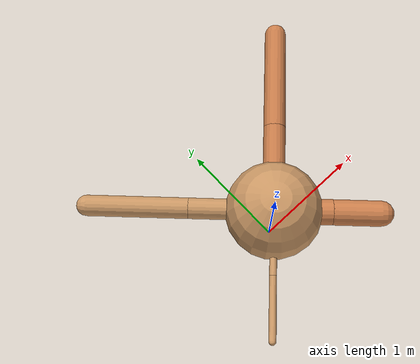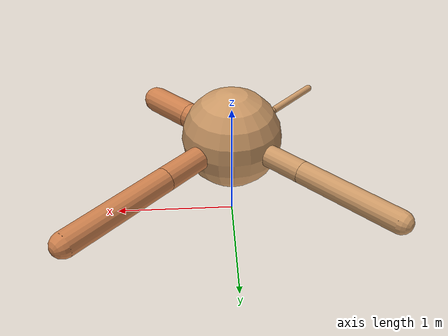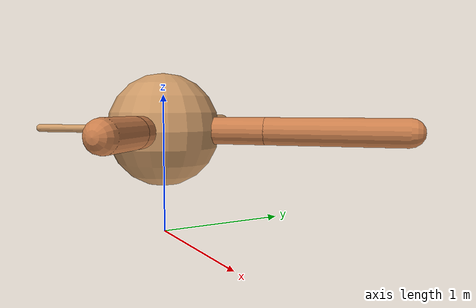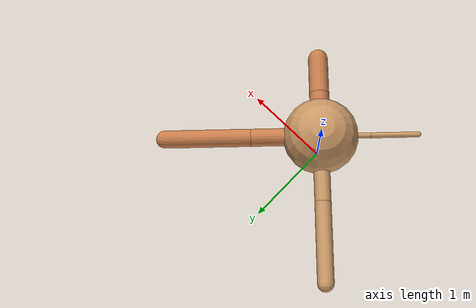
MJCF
<?xml version="1.0" ?>
<mujoco model="ant">

	<compiler angle="degree" coordinate="local" inertiafromgeom="true"/>

	<option integrator="RK4" timestep="0.01"/>

	<custom>

		<numeric data="0.0 0.0 0.55 1.0 0.0 0.0 0.0 0.0 1.0 0.0 -1.0 0.0 -1.0 0.0 1.0" name="init_qpos"/>

	</custom>

	<default>

		<joint armature="1" damping="1" limited="true"/>

		<geom conaffinity="0" condim="3" density="5.0" friction="1.5 0.1 0.1" margin="0.01" rgba="0.8 0.6 0.4 1"/>

	</default>

	<worldbody>

		<body name="torso" pos="0 0 0.75">

			<geom name="torso_geom" pos="0 0 0" size="0.4047872678811011" type="sphere"/>

			<!--joint armature="0" damping="0" limited="false" margin="0.01" name="root" pos="0 0 0" type="free"/-->

			<body name="front_left_leg" pos="0 0 0">

				<geom fromto="0 0 0 0.2 0.2 0" name="aux_1_geom" size="0.09484080760077125" type="capsule" rgba=".8 .5 .3 1"/>

				<body name="aux_1" pos="0.2 0.2 0">

					<joint axis="0 0 1" name="hip_1" pos="0.0 0.0 0.0" range="-40 40" type="hinge"/>

					<geom fromto="0 0 0 0.32372332694528627 0.32372332694528627 0" name="left_leg_geom" size="0.09484080760077125" type="capsule" rgba=".8 .5 .3 1"/>

					<body pos="0.32372332694528627 0.32372332694528627 0" name="front_left_foot">

						<joint axis="-1 1 0" name="ankle_1" pos="0.0 0.0 0.0" range="30 100" type="hinge"/>

						<geom fromto="0 0 0 0.6474466538905725 0.6474466538905725 0" name="left_ankle_geom" size="0.09484080760077125" type="capsule" rgba=".8 .5 .3 1"/>

					</body>

				</body>

			</body>

			<body name="front_right_leg" pos="0 0 0">

				<geom fromto="0 0 0 -0.2 0.2 0" name="aux_2_geom" size="0.087485449493009" type="capsule"/>

				<body name="aux_2" pos="-0.2 0.2 0">

					<joint axis="0 0 1" name="hip_2" pos="0.0 0.0 0.0" range="-40 40" type="hinge"/>

					<geom fromto="0 0 0 -0.2964073366211984 0.2964073366211984 0" name="right_leg_geom" size="0.087485449493009" type="capsule"/>

					<body pos="-0.2964073366211984 0.2964073366211984 0" name="front_right_foot">

						<joint axis="1 1 0" name="ankle_2" pos="0.0 0.0 0.0" range="-100 -30" type="hinge"/>

						<geom fromto="0 0 0 -0.5928146732423968 0.5928146732423968 0" name="right_ankle_geom" size="0.087485449493009" type="capsule"/>

					</body>

				</body>

			</body>

			<body name="left_back_leg" pos="0 0 0">

				<geom fromto="0 0 0 -0.2 -0.2 0" name="aux_3_geom" size="0.030172887907502055" type="capsule"/>

				<body name="aux_3" pos="-0.2 -0.2 0">

					<joint axis="0 0 1" name="hip_3" pos="0.0 0.0 0.0" range="-40 40" type="hinge"/>

					<geom fromto="0 0 0 -0.17941792540203233 -0.17941792540203233 0" name="back_leg_geom" size="0.030172887907502055" type="capsule"/>

					<body pos="-0.17941792540203233 -0.17941792540203233 0" name="left_back_foot">

						<joint axis="-1 1 0" name="ankle_3" pos="0.0 0.0 0.0" range="-100 -30" type="hinge"/>

						<geom fromto="0 0 0 -0.35883585080406466 -0.35883585080406466 0" name="third_ankle_geom" size="0.030172887907502055" type="capsule"/>

					</body>

				</body>

			</body>

			<body name="right_back_leg" pos="0 0 0">

				<geom fromto="0 0 0 0.2 -0.2 0" name="aux_4_geom" size="0.10714996827750754" type="capsule" rgba=".8 .5 .3 1"/>

				<body name="aux_4" pos="0.2 -0.2 0">

					<joint axis="0 0 1" name="hip_4" pos="0.0 0.0 0.0" range="-40 40" type="hinge"/>

					<geom fromto="0 0 0 0.14104216949132234 -0.14104216949132234 0" name="rightback_leg_geom" size="0.10714996827750754" type="capsule" rgba=".8 .5 .3 1"/>

					<body pos="0.14104216949132234 -0.14104216949132234 0" name="right_back_foot">

						<joint axis="1 1 0" name="ankle_4" pos="0.0 0.0 0.0" range="30 100" type="hinge"/>

						<geom fromto="0 0 0 0.2820843389826447 -0.2820843389826447 0" name="fourth_ankle_geom" size="0.10714996827750754" type="capsule" rgba=".8 .5 .3 1"/>

					</body>

				</body>

			</body>

		</body>

	</worldbody>

	<actuator>

		<motor ctrllimited="true" ctrlrange="-1.0 1.0" joint="hip_4" gear="150"/>

		<motor ctrllimited="true" ctrlrange="-1.0 1.0" joint="ankle_4" gear="150"/>

		<motor ctrllimited="true" ctrlrange="-1.0 1.0" joint="hip_1" gear="150"/>

		<motor ctrllimited="true" ctrlrange="-1.0 1.0" joint="ankle_1" gear="150"/>

		<motor ctrllimited="true" ctrlrange="-1.0 1.0" joint="hip_2" gear="150"/>

		<motor ctrllimited="true" ctrlrange="-1.0 1.0" joint="ankle_2" gear="150"/>

		<motor ctrllimited="true" ctrlrange="-1.0 1.0" joint="hip_3" gear="150"/>

		<motor ctrllimited="true" ctrlrange="-1.0 1.0" joint="ankle_3" gear="150"/>

	</actuator>

</mujoco>
